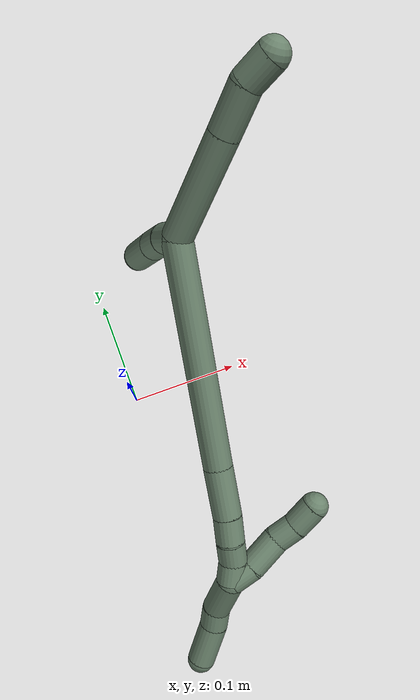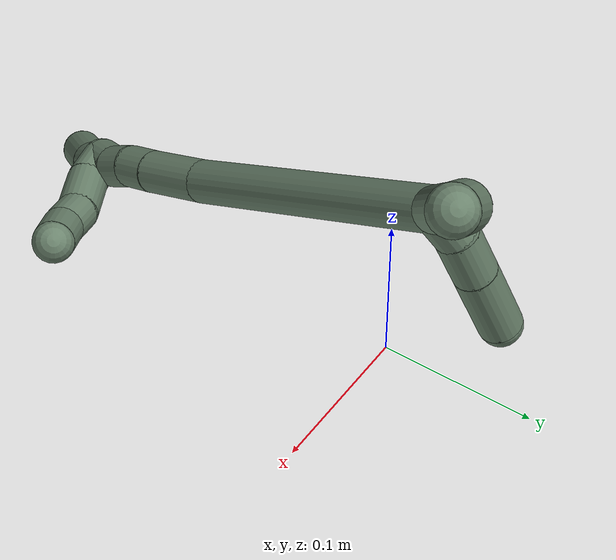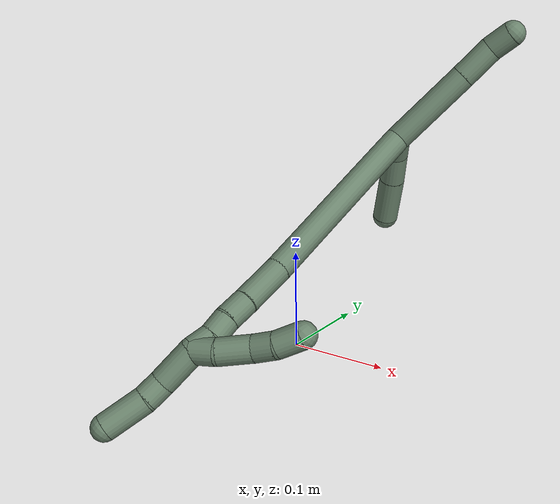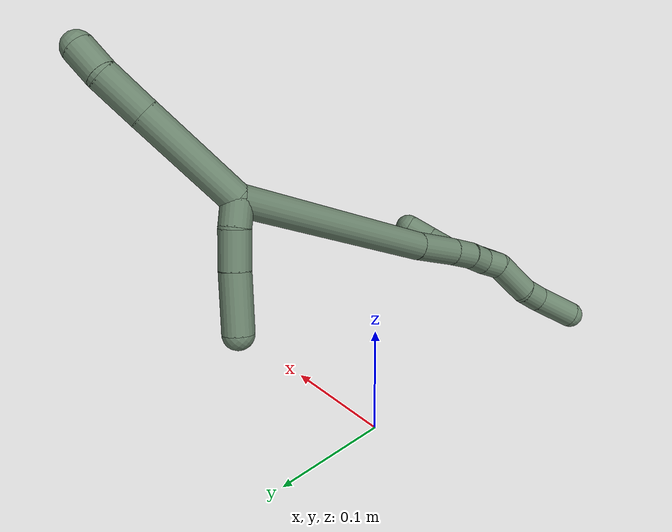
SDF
<sdf version="1.7">
 <world name="default">
  <model name="17">
   <static>0</static>
   <link name="17">
    <collision name="collision-cylinder-e_1_2_8">
     <pose>0.004883 -0.000719 0.043388 0.01656 0.112065 0.000929</pose>
     <geometry><cylinder><radius>0.0125</radius><length>0.087336</length></cylinder></geometry>
     <surface>
      <friction><ode><mu>1.16</mu><mu2>1.16</mu2><slip1>0</slip1><slip2>0</slip2></ode></friction>
      <contact><ode><kp>1e+06</kp><kd>1</kd><max_vel>0</max_vel><min_depth>0.001</min_depth></ode></contact>
     </surface>
    </collision>
    <visual name="visual-cylinder-e_1_2_8">
     <pose>0.004883 -0.000719 0.043388 0.01656 0.112065 0.000929</pose>
     <geometry><cylinder><radius>0.0125</radius><length>0.087336</length></cylinder></geometry>
     <material><ambient>0.415686 0.509804 0.423529 1</ambient></material>
    </visual>
    <collision name="collision-cylinder-e_2_8_9">
     <pose>0.011671 -0.001898 0.105497 0.024626 0.101337 0.001249</pose>
     <geometry><cylinder><radius>0.0125</radius><length>0.037646</length></cylinder></geometry>
     <surface>
      <friction><ode><mu>1.16</mu><mu2>1.16</mu2><slip1>0</slip1><slip2>0</slip2></ode></friction>
      <contact><ode><kp>1e+06</kp><kd>1</kd><max_vel>0</max_vel><min_depth>0.001</min_depth></ode></contact>
     </surface>
    </collision>
    <visual name="visual-cylinder-e_2_8_9">
     <pose>0.011671 -0.001898 0.105497 0.024626 0.101337 0.001249</pose>
     <geometry><cylinder><radius>0.0125</radius><length>0.037646</length></cylinder></geometry>
     <material><ambient>0.415686 0.509804 0.423529 1</ambient></material>
    </visual>
    <collision name="collision-cylinder-e_3_9_6">
     <pose>0.018348 -0.004321 0.135613 0.170465 0.39143 0.033874</pose>
     <geometry><cylinder><radius>0.0125</radius><length>0.025019</length></cylinder></geometry>
     <surface>
      <friction><ode><mu>1.16</mu><mu2>1.16</mu2><slip1>0</slip1><slip2>0</slip2></ode></friction>
      <contact><ode><kp>1e+06</kp><kd>1</kd><max_vel>0</max_vel><min_depth>0.001</min_depth></ode></contact>
     </surface>
    </collision>
    <visual name="visual-cylinder-e_3_9_6">
     <pose>0.018348 -0.004321 0.135613 0.170465 0.39143 0.033874</pose>
     <geometry><cylinder><radius>0.0125</radius><length>0.025019</length></cylinder></geometry>
     <material><ambient>0.415686 0.509804 0.423529 1</ambient></material>
    </visual>
    <collision name="collision-cylinder-e_1_2_10">
     <pose>-0.001057 0.008605 -0.006032 -2.18219 -0.100293 0.192352</pose>
     <geometry><cylinder><radius>0.0125</radius><length>0.021123</length></cylinder></geometry>
     <surface>
      <friction><ode><mu>1.16</mu><mu2>1.16</mu2><slip1>0</slip1><slip2>0</slip2></ode></friction>
      <contact><ode><kp>1e+06</kp><kd>1</kd><max_vel>0</max_vel><min_depth>0.001</min_depth></ode></contact>
     </surface>
    </collision>
    <visual name="visual-cylinder-e_1_2_10">
     <pose>-0.001057 0.008605 -0.006032 -2.18219 -0.100293 0.192352</pose>
     <geometry><cylinder><radius>0.0125</radius><length>0.021123</length></cylinder></geometry>
     <material><ambient>0.415686 0.509804 0.423529 1</ambient></material>
    </visual>
    <collision name="collision-cylinder-e_2_10_11">
     <pose>-0.001448 0.028625 -0.02257 -2.31476 0.042968 -0.097881</pose>
     <geometry><cylinder><radius>0.0125</radius><length>0.031057</length></cylinder></geometry>
     <surface>
      <friction><ode><mu>1.16</mu><mu2>1.16</mu2><slip1>0</slip1><slip2>0</slip2></ode></friction>
      <contact><ode><kp>1e+06</kp><kd>1</kd><max_vel>0</max_vel><min_depth>0.001</min_depth></ode></contact>
     </surface>
    </collision>
    <visual name="visual-cylinder-e_2_10_11">
     <pose>-0.001448 0.028625 -0.02257 -2.31476 0.042968 -0.097881</pose>
     <geometry><cylinder><radius>0.0125</radius><length>0.031057</length></cylinder></geometry>
     <material><ambient>0.415686 0.509804 0.423529 1</ambient></material>
    </visual>
    <collision name="collision-cylinder-e_3_11_5">
     <pose>-2.1e-05 0.056894 -0.050019 -2.35879 0.031771 -0.076953</pose>
     <geometry><cylinder><radius>0.0125</radius><length>0.04782</length></cylinder></geometry>
     <surface>
      <friction><ode><mu>1.16</mu><mu2>1.16</mu2><slip1>0</slip1><slip2>0</slip2></ode></friction>
      <contact><ode><kp>1e+06</kp><kd>1</kd><max_vel>0</max_vel><min_depth>0.001</min_depth></ode></contact>
     </surface>
    </collision>
    <visual name="visual-cylinder-e_3_11_5">
     <pose>-2.1e-05 0.056894 -0.050019 -2.35879 0.031771 -0.076953</pose>
     <geometry><cylinder><radius>0.0125</radius><length>0.04782</length></cylinder></geometry>
     <material><ambient>0.415686 0.509804 0.423529 1</ambient></material>
    </visual>
    <collision name="collision-cylinder-e_1_2_12">
     <pose>0.030075 -0.04363 -0.079221 2.63818 0.321037 1.12383</pose>
     <geometry><cylinder><radius>0.0125</radius><length>0.190621</length></cylinder></geometry>
     <surface>
      <friction><ode><mu>1.16</mu><mu2>1.16</mu2><slip1>0</slip1><slip2>0</slip2></ode></friction>
      <contact><ode><kp>1e+06</kp><kd>1</kd><max_vel>0</max_vel><min_depth>0.001</min_depth></ode></contact>
     </surface>
    </collision>
    <visual name="visual-cylinder-e_1_2_12">
     <pose>0.030075 -0.04363 -0.079221 2.63818 0.321037 1.12383</pose>
     <geometry><cylinder><radius>0.0125</radius><length>0.190621</length></cylinder></geometry>
     <material><ambient>0.415686 0.509804 0.423529 1</ambient></material>
    </visual>
    <collision name="collision-cylinder-e_2_12_13">
     <pose>0.067071 -0.098893 -0.176573 2.57112 0.310847 0.981483</pose>
     <geometry><cylinder><radius>0.0125</radius><length>0.045252</length></cylinder></geometry>
     <surface>
      <friction><ode><mu>1.16</mu><mu2>1.16</mu2><slip1>0</slip1><slip2>0</slip2></ode></friction>
      <contact><ode><kp>1e+06</kp><kd>1</kd><max_vel>0</max_vel><min_depth>0.001</min_depth></ode></contact>
     </surface>
    </collision>
    <visual name="visual-cylinder-e_2_12_13">
     <pose>0.067071 -0.098893 -0.176573 2.57112 0.310847 0.981483</pose>
     <geometry><cylinder><radius>0.0125</radius><length>0.045252</length></cylinder></geometry>
     <material><ambient>0.415686 0.509804 0.423529 1</ambient></material>
    </visual>
    <collision name="collision-cylinder-e_3_13_14">
     <pose>0.077007 -0.116428 -0.204673 2.60714 0.254629 0.874721</pose>
     <geometry><cylinder><radius>0.0125</radius><length>0.023944</length></cylinder></geometry>
     <surface>
      <friction><ode><mu>1.16</mu><mu2>1.16</mu2><slip1>0</slip1><slip2>0</slip2></ode></friction>
      <contact><ode><kp>1e+06</kp><kd>1</kd><max_vel>0</max_vel><min_depth>0.001</min_depth></ode></contact>
     </surface>
    </collision>
    <visual name="visual-cylinder-e_3_13_14">
     <pose>0.077007 -0.116428 -0.204673 2.60714 0.254629 0.874721</pose>
     <geometry><cylinder><radius>0.0125</radius><length>0.023944</length></cylinder></geometry>
     <material><ambient>0.415686 0.509804 0.423529 1</ambient></material>
    </visual>
    <collision name="collision-cylinder-e_4_14_15">
     <pose>0.08318 -0.126006 -0.223483 2.74743 0.318561 1.35498</pose>
     <geometry><cylinder><radius>0.0125</radius><length>0.020162</length></cylinder></geometry>
     <surface>
      <friction><ode><mu>1.16</mu><mu2>1.16</mu2><slip1>0</slip1><slip2>0</slip2></ode></friction>
      <contact><ode><kp>1e+06</kp><kd>1</kd><max_vel>0</max_vel><min_depth>0.001</min_depth></ode></contact>
     </surface>
    </collision>
    <visual name="visual-cylinder-e_4_14_15">
     <pose>0.08318 -0.126006 -0.223483 2.74743 0.318561 1.35498</pose>
     <geometry><cylinder><radius>0.0125</radius><length>0.020162</length></cylinder></geometry>
     <material><ambient>0.415686 0.509804 0.423529 1</ambient></material>
    </visual>
    <collision name="collision-cylinder-e_5_15_1">
     <pose>0.086761 -0.134145 -0.241274 2.67911 0.042329 0.179322</pose>
     <geometry><cylinder><radius>0.0125</radius><length>0.020021</length></cylinder></geometry>
     <surface>
      <friction><ode><mu>1.16</mu><mu2>1.16</mu2><slip1>0</slip1><slip2>0</slip2></ode></friction>
      <contact><ode><kp>1e+06</kp><kd>1</kd><max_vel>0</max_vel><min_depth>0.001</min_depth></ode></contact>
     </surface>
    </collision>
    <visual name="visual-cylinder-e_5_15_1">
     <pose>0.086761 -0.134145 -0.241274 2.67911 0.042329 0.179322</pose>
     <geometry><cylinder><radius>0.0125</radius><length>0.020021</length></cylinder></geometry>
     <material><ambient>0.415686 0.509804 0.423529 1</ambient></material>
    </visual>
    <collision name="collision-cylinder-e_1_1_16">
     <pose>0.095446 -0.136325 -0.243107 -0.31035 0.83535 -0.138623</pose>
     <geometry><cylinder><radius>0.0125</radius><length>0.022283</length></cylinder></geometry>
     <surface>
      <friction><ode><mu>1.16</mu><mu2>1.16</mu2><slip1>0</slip1><slip2>0</slip2></ode></friction>
      <contact><ode><kp>1e+06</kp><kd>1</kd><max_vel>0</max_vel><min_depth>0.001</min_depth></ode></contact>
     </surface>
    </collision>
    <visual name="visual-cylinder-e_1_1_16">
     <pose>0.095446 -0.136325 -0.243107 -0.31035 0.83535 -0.138623</pose>
     <geometry><cylinder><radius>0.0125</radius><length>0.022283</length></cylinder></geometry>
     <material><ambient>0.415686 0.509804 0.423529 1</ambient></material>
    </visual>
    <collision name="collision-cylinder-e_2_16_17">
     <pose>0.113002 -0.128463 -0.223952 -0.434046 0.611057 -0.138867</pose>
     <geometry><cylinder><radius>0.0125</radius><length>0.032396</length></cylinder></geometry>
     <surface>
      <friction><ode><mu>1.16</mu><mu2>1.16</mu2><slip1>0</slip1><slip2>0</slip2></ode></friction>
      <contact><ode><kp>1e+06</kp><kd>1</kd><max_vel>0</max_vel><min_depth>0.001</min_depth></ode></contact>
     </surface>
    </collision>
    <visual name="visual-cylinder-e_2_16_17">
     <pose>0.113002 -0.128463 -0.223952 -0.434046 0.611057 -0.138867</pose>
     <geometry><cylinder><radius>0.0125</radius><length>0.032396</length></cylinder></geometry>
     <material><ambient>0.415686 0.509804 0.423529 1</ambient></material>
    </visual>
    <collision name="collision-cylinder-e_3_17_18">
     <pose>0.128892 -0.121973 -0.203864 -0.112631 0.683335 -0.04009</pose>
     <geometry><cylinder><radius>0.0125</radius><length>0.020897</length></cylinder></geometry>
     <surface>
      <friction><ode><mu>1.16</mu><mu2>1.16</mu2><slip1>0</slip1><slip2>0</slip2></ode></friction>
      <contact><ode><kp>1e+06</kp><kd>1</kd><max_vel>0</max_vel><min_depth>0.001</min_depth></ode></contact>
     </surface>
    </collision>
    <visual name="visual-cylinder-e_3_17_18">
     <pose>0.128892 -0.121973 -0.203864 -0.112631 0.683335 -0.04009</pose>
     <geometry><cylinder><radius>0.0125</radius><length>0.020897</length></cylinder></geometry>
     <material><ambient>0.415686 0.509804 0.423529 1</ambient></material>
    </visual>
    <collision name="collision-cylinder-e_4_18_4">
     <pose>0.140785 -0.119223 -0.184964 -0.167905 0.44853 -0.038385</pose>
     <geometry><cylinder><radius>0.0125</radius><length>0.024424</length></cylinder></geometry>
     <surface>
      <friction><ode><mu>1.16</mu><mu2>1.16</mu2><slip1>0</slip1><slip2>0</slip2></ode></friction>
      <contact><ode><kp>1e+06</kp><kd>1</kd><max_vel>0</max_vel><min_depth>0.001</min_depth></ode></contact>
     </surface>
    </collision>
    <visual name="visual-cylinder-e_4_18_4">
     <pose>0.140785 -0.119223 -0.184964 -0.167905 0.44853 -0.038385</pose>
     <geometry><cylinder><radius>0.0125</radius><length>0.024424</length></cylinder></geometry>
     <material><ambient>0.415686 0.509804 0.423529 1</ambient></material>
    </visual>
    <collision name="collision-cylinder-e_1_1_19">
     <pose>0.086676 -0.138859 -0.269483 3.12854 -0.026384 -2.22261</pose>
     <geometry><cylinder><radius>0.0125</radius><length>0.038533</length></cylinder></geometry>
     <surface>
      <friction><ode><mu>1.16</mu><mu2>1.16</mu2><slip1>0</slip1><slip2>0</slip2></ode></friction>
      <contact><ode><kp>1e+06</kp><kd>1</kd><max_vel>0</max_vel><min_depth>0.001</min_depth></ode></contact>
     </surface>
    </collision>
    <visual name="visual-cylinder-e_1_1_19">
     <pose>0.086676 -0.138859 -0.269483 3.12854 -0.026384 -2.22261</pose>
     <geometry><cylinder><radius>0.0125</radius><length>0.038533</length></cylinder></geometry>
     <material><ambient>0.415686 0.509804 0.423529 1</ambient></material>
    </visual>
    <collision name="collision-cylinder-e_2_19_20">
     <pose>0.087186 -0.141751 -0.298502 2.87741 0.100325 0.722554</pose>
     <geometry><cylinder><radius>0.0125</radius><length>0.020327</length></cylinder></geometry>
     <surface>
      <friction><ode><mu>1.16</mu><mu2>1.16</mu2><slip1>0</slip1><slip2>0</slip2></ode></friction>
      <contact><ode><kp>1e+06</kp><kd>1</kd><max_vel>0</max_vel><min_depth>0.001</min_depth></ode></contact>
     </surface>
    </collision>
    <visual name="visual-cylinder-e_2_19_20">
     <pose>0.087186 -0.141751 -0.298502 2.87741 0.100325 0.722554</pose>
     <geometry><cylinder><radius>0.0125</radius><length>0.020327</length></cylinder></geometry>
     <material><ambient>0.415686 0.509804 0.423529 1</ambient></material>
    </visual>
    <collision name="collision-cylinder-e_3_20_3">
     <pose>0.086494 -0.150347 -0.327879 2.84683 -0.083245 -0.546994</pose>
     <geometry><cylinder><radius>0.0125</radius><length>0.04114</length></cylinder></geometry>
     <surface>
      <friction><ode><mu>1.16</mu><mu2>1.16</mu2><slip1>0</slip1><slip2>0</slip2></ode></friction>
      <contact><ode><kp>1e+06</kp><kd>1</kd><max_vel>0</max_vel><min_depth>0.001</min_depth></ode></contact>
     </surface>
    </collision>
    <visual name="visual-cylinder-e_3_20_3">
     <pose>0.086494 -0.150347 -0.327879 2.84683 -0.083245 -0.546994</pose>
     <geometry><cylinder><radius>0.0125</radius><length>0.04114</length></cylinder></geometry>
     <material><ambient>0.415686 0.509804 0.423529 1</ambient></material>
    </visual>
    <collision name="collision-sphere-3">
     <pose>0.084783 -0.156302 -0.347493 0 -0 0</pose>
     <geometry><sphere><radius>0.0125</radius></sphere></geometry>
     <surface>
      <friction><ode><mu>1.16</mu><mu2>1.16</mu2><slip1>0</slip1><slip2>0</slip2></ode></friction>
      <contact><ode><kp>1e+06</kp><kd>1</kd><max_vel>0</max_vel><min_depth>0.001</min_depth></ode></contact>
     </surface>
    </collision>
    <visual name="visual-sphere-3">
     <pose>0.084783 -0.156302 -0.347493 0 -0 0</pose>
     <geometry><sphere><radius>0.0125</radius></sphere></geometry>
     <material><ambient>0.415686 0.509804 0.423529 1</ambient></material>
    </visual>
    <collision name="collision-sphere-20">
     <pose>0.088204 -0.144392 -0.308264 0 -0 0</pose>
     <geometry><sphere><radius>0.0125</radius></sphere></geometry>
     <surface>
      <friction><ode><mu>1.16</mu><mu2>1.16</mu2><slip1>0</slip1><slip2>0</slip2></ode></friction>
      <contact><ode><kp>1e+06</kp><kd>1</kd><max_vel>0</max_vel><min_depth>0.001</min_depth></ode></contact>
     </surface>
    </collision>
    <visual name="visual-sphere-20">
     <pose>0.088204 -0.144392 -0.308264 0 -0 0</pose>
     <geometry><sphere><radius>0.0125</radius></sphere></geometry>
     <material><ambient>0.415686 0.509804 0.423529 1</ambient></material>
    </visual>
    <collision name="collision-sphere-19">
     <pose>0.086168 -0.139111 -0.288741 0 -0 0</pose>
     <geometry><sphere><radius>0.0125</radius></sphere></geometry>
     <surface>
      <friction><ode><mu>1.16</mu><mu2>1.16</mu2><slip1>0</slip1><slip2>0</slip2></ode></friction>
      <contact><ode><kp>1e+06</kp><kd>1</kd><max_vel>0</max_vel><min_depth>0.001</min_depth></ode></contact>
     </surface>
    </collision>
    <visual name="visual-sphere-19">
     <pose>0.086168 -0.139111 -0.288741 0 -0 0</pose>
     <geometry><sphere><radius>0.0125</radius></sphere></geometry>
     <material><ambient>0.415686 0.509804 0.423529 1</ambient></material>
    </visual>
    <collision name="collision-sphere-11">
     <pose>-0.000781 0.04004 -0.033076 0 -0 0</pose>
     <geometry><sphere><radius>0.0125</radius></sphere></geometry>
     <surface>
      <friction><ode><mu>1.16</mu><mu2>1.16</mu2><slip1>0</slip1><slip2>0</slip2></ode></friction>
      <contact><ode><kp>1e+06</kp><kd>1</kd><max_vel>0</max_vel><min_depth>0.001</min_depth></ode></contact>
     </surface>
    </collision>
    <visual name="visual-sphere-11">
     <pose>-0.000781 0.04004 -0.033076 0 -0 0</pose>
     <geometry><sphere><radius>0.0125</radius></sphere></geometry>
     <material><ambient>0.415686 0.509804 0.423529 1</ambient></material>
    </visual>
    <collision name="collision-sphere-10">
     <pose>-0.002115 0.017209 -0.012064 0 -0 0</pose>
     <geometry><sphere><radius>0.0125</radius></sphere></geometry>
     <surface>
      <friction><ode><mu>1.16</mu><mu2>1.16</mu2><slip1>0</slip1><slip2>0</slip2></ode></friction>
      <contact><ode><kp>1e+06</kp><kd>1</kd><max_vel>0</max_vel><min_depth>0.001</min_depth></ode></contact>
     </surface>
    </collision>
    <visual name="visual-sphere-10">
     <pose>-0.002115 0.017209 -0.012064 0 -0 0</pose>
     <geometry><sphere><radius>0.0125</radius></sphere></geometry>
     <material><ambient>0.415686 0.509804 0.423529 1</ambient></material>
    </visual>
    <collision name="collision-sphere-6">
     <pose>0.02312 -0.006283 0.147008 0 -0 0</pose>
     <geometry><sphere><radius>0.0125</radius></sphere></geometry>
     <surface>
      <friction><ode><mu>1.16</mu><mu2>1.16</mu2><slip1>0</slip1><slip2>0</slip2></ode></friction>
      <contact><ode><kp>1e+06</kp><kd>1</kd><max_vel>0</max_vel><min_depth>0.001</min_depth></ode></contact>
     </surface>
    </collision>
    <visual name="visual-sphere-6">
     <pose>0.02312 -0.006283 0.147008 0 -0 0</pose>
     <geometry><sphere><radius>0.0125</radius></sphere></geometry>
     <material><ambient>0.415686 0.509804 0.423529 1</ambient></material>
    </visual>
    <collision name="collision-sphere-9">
     <pose>0.013575 -0.002359 0.124217 0 -0 0</pose>
     <geometry><sphere><radius>0.0125</radius></sphere></geometry>
     <surface>
      <friction><ode><mu>1.16</mu><mu2>1.16</mu2><slip1>0</slip1><slip2>0</slip2></ode></friction>
      <contact><ode><kp>1e+06</kp><kd>1</kd><max_vel>0</max_vel><min_depth>0.001</min_depth></ode></contact>
     </surface>
    </collision>
    <visual name="visual-sphere-9">
     <pose>0.013575 -0.002359 0.124217 0 -0 0</pose>
     <geometry><sphere><radius>0.0125</radius></sphere></geometry>
     <material><ambient>0.415686 0.509804 0.423529 1</ambient></material>
    </visual>
    <collision name="collision-sphere-2">
     <geometry><sphere><radius>0.0125</radius></sphere></geometry>
     <surface>
      <friction><ode><mu>1.16</mu><mu2>1.16</mu2><slip1>0</slip1><slip2>0</slip2></ode></friction>
      <contact><ode><kp>1e+06</kp><kd>1</kd><max_vel>0</max_vel><min_depth>0.001</min_depth></ode></contact>
     </surface>
    </collision>
    <visual name="visual-sphere-2">
     <geometry><sphere><radius>0.0125</radius></sphere></geometry>
     <material><ambient>0.415686 0.509804 0.423529 1</ambient></material>
    </visual>
    <collision name="collision-sphere-8">
     <pose>0.009767 -0.001437 0.086776 0 -0 0</pose>
     <geometry><sphere><radius>0.0125</radius></sphere></geometry>
     <surface>
      <friction><ode><mu>1.16</mu><mu2>1.16</mu2><slip1>0</slip1><slip2>0</slip2></ode></friction>
      <contact><ode><kp>1e+06</kp><kd>1</kd><max_vel>0</max_vel><min_depth>0.001</min_depth></ode></contact>
     </surface>
    </collision>
    <visual name="visual-sphere-8">
     <pose>0.009767 -0.001437 0.086776 0 -0 0</pose>
     <geometry><sphere><radius>0.0125</radius></sphere></geometry>
     <material><ambient>0.415686 0.509804 0.423529 1</ambient></material>
    </visual>
    <collision name="collision-sphere-5">
     <pose>0.000738 0.073749 -0.066961 0 -0 0</pose>
     <geometry><sphere><radius>0.0125</radius></sphere></geometry>
     <surface>
      <friction><ode><mu>1.16</mu><mu2>1.16</mu2><slip1>0</slip1><slip2>0</slip2></ode></friction>
      <contact><ode><kp>1e+06</kp><kd>1</kd><max_vel>0</max_vel><min_depth>0.001</min_depth></ode></contact>
     </surface>
    </collision>
    <visual name="visual-sphere-5">
     <pose>0.000738 0.073749 -0.066961 0 -0 0</pose>
     <geometry><sphere><radius>0.0125</radius></sphere></geometry>
     <material><ambient>0.415686 0.509804 0.423529 1</ambient></material>
    </visual>
    <collision name="collision-sphere-12">
     <pose>0.060151 -0.08726 -0.158443 0 -0 0</pose>
     <geometry><sphere><radius>0.0125</radius></sphere></geometry>
     <surface>
      <friction><ode><mu>1.16</mu><mu2>1.16</mu2><slip1>0</slip1><slip2>0</slip2></ode></friction>
      <contact><ode><kp>1e+06</kp><kd>1</kd><max_vel>0</max_vel><min_depth>0.001</min_depth></ode></contact>
     </surface>
    </collision>
    <visual name="visual-sphere-12">
     <pose>0.060151 -0.08726 -0.158443 0 -0 0</pose>
     <geometry><sphere><radius>0.0125</radius></sphere></geometry>
     <material><ambient>0.415686 0.509804 0.423529 1</ambient></material>
    </visual>
    <collision name="collision-sphere-13">
     <pose>0.073992 -0.110526 -0.194703 0 -0 0</pose>
     <geometry><sphere><radius>0.0125</radius></sphere></geometry>
     <surface>
      <friction><ode><mu>1.16</mu><mu2>1.16</mu2><slip1>0</slip1><slip2>0</slip2></ode></friction>
      <contact><ode><kp>1e+06</kp><kd>1</kd><max_vel>0</max_vel><min_depth>0.001</min_depth></ode></contact>
     </surface>
    </collision>
    <visual name="visual-sphere-13">
     <pose>0.073992 -0.110526 -0.194703 0 -0 0</pose>
     <geometry><sphere><radius>0.0125</radius></sphere></geometry>
     <material><ambient>0.415686 0.509804 0.423529 1</ambient></material>
    </visual>
    <collision name="collision-sphere-14">
     <pose>0.080023 -0.12233 -0.214644 0 -0 0</pose>
     <geometry><sphere><radius>0.0125</radius></sphere></geometry>
     <surface>
      <friction><ode><mu>1.16</mu><mu2>1.16</mu2><slip1>0</slip1><slip2>0</slip2></ode></friction>
      <contact><ode><kp>1e+06</kp><kd>1</kd><max_vel>0</max_vel><min_depth>0.001</min_depth></ode></contact>
     </surface>
    </collision>
    <visual name="visual-sphere-14">
     <pose>0.080023 -0.12233 -0.214644 0 -0 0</pose>
     <geometry><sphere><radius>0.0125</radius></sphere></geometry>
     <material><ambient>0.415686 0.509804 0.423529 1</ambient></material>
    </visual>
    <collision name="collision-sphere-15">
     <pose>0.086338 -0.129683 -0.232323 0 -0 0</pose>
     <geometry><sphere><radius>0.0125</radius></sphere></geometry>
     <surface>
      <friction><ode><mu>1.16</mu><mu2>1.16</mu2><slip1>0</slip1><slip2>0</slip2></ode></friction>
      <contact><ode><kp>1e+06</kp><kd>1</kd><max_vel>0</max_vel><min_depth>0.001</min_depth></ode></contact>
     </surface>
    </collision>
    <visual name="visual-sphere-15">
     <pose>0.086338 -0.129683 -0.232323 0 -0 0</pose>
     <geometry><sphere><radius>0.0125</radius></sphere></geometry>
     <material><ambient>0.415686 0.509804 0.423529 1</ambient></material>
    </visual>
    <collision name="collision-sphere-1">
     <pose>0.087185 -0.138608 -0.250225 0 -0 0</pose>
     <geometry><sphere><radius>0.0125</radius></sphere></geometry>
     <surface>
      <friction><ode><mu>1.16</mu><mu2>1.16</mu2><slip1>0</slip1><slip2>0</slip2></ode></friction>
      <contact><ode><kp>1e+06</kp><kd>1</kd><max_vel>0</max_vel><min_depth>0.001</min_depth></ode></contact>
     </surface>
    </collision>
    <visual name="visual-sphere-1">
     <pose>0.087185 -0.138608 -0.250225 0 -0 0</pose>
     <geometry><sphere><radius>0.0125</radius></sphere></geometry>
     <material><ambient>0.415686 0.509804 0.423529 1</ambient></material>
    </visual>
    <collision name="collision-sphere-18">
     <pose>0.135489 -0.121062 -0.195813 0 -0 0</pose>
     <geometry><sphere><radius>0.0125</radius></sphere></geometry>
     <surface>
      <friction><ode><mu>1.16</mu><mu2>1.16</mu2><slip1>0</slip1><slip2>0</slip2></ode></friction>
      <contact><ode><kp>1e+06</kp><kd>1</kd><max_vel>0</max_vel><min_depth>0.001</min_depth></ode></contact>
     </surface>
    </collision>
    <visual name="visual-sphere-18">
     <pose>0.135489 -0.121062 -0.195813 0 -0 0</pose>
     <geometry><sphere><radius>0.0125</radius></sphere></geometry>
     <material><ambient>0.415686 0.509804 0.423529 1</ambient></material>
    </visual>
    <collision name="collision-sphere-16">
     <pose>0.103708 -0.134042 -0.235989 0 -0 0</pose>
     <geometry><sphere><radius>0.0125</radius></sphere></geometry>
     <surface>
      <friction><ode><mu>1.16</mu><mu2>1.16</mu2><slip1>0</slip1><slip2>0</slip2></ode></friction>
      <contact><ode><kp>1e+06</kp><kd>1</kd><max_vel>0</max_vel><min_depth>0.001</min_depth></ode></contact>
     </surface>
    </collision>
    <visual name="visual-sphere-16">
     <pose>0.103708 -0.134042 -0.235989 0 -0 0</pose>
     <geometry><sphere><radius>0.0125</radius></sphere></geometry>
     <material><ambient>0.415686 0.509804 0.423529 1</ambient></material>
    </visual>
    <collision name="collision-sphere-17">
     <pose>0.122295 -0.122884 -0.211916 0 -0 0</pose>
     <geometry><sphere><radius>0.0125</radius></sphere></geometry>
     <surface>
      <friction><ode><mu>1.16</mu><mu2>1.16</mu2><slip1>0</slip1><slip2>0</slip2></ode></friction>
      <contact><ode><kp>1e+06</kp><kd>1</kd><max_vel>0</max_vel><min_depth>0.001</min_depth></ode></contact>
     </surface>
    </collision>
    <visual name="visual-sphere-17">
     <pose>0.122295 -0.122884 -0.211916 0 -0 0</pose>
     <geometry><sphere><radius>0.0125</radius></sphere></geometry>
     <material><ambient>0.415686 0.509804 0.423529 1</ambient></material>
    </visual>
    <collision name="collision-sphere-4">
     <pose>0.14608 -0.117384 -0.174115 0 -0 0</pose>
     <geometry><sphere><radius>0.0125</radius></sphere></geometry>
     <surface>
      <friction><ode><mu>1.16</mu><mu2>1.16</mu2><slip1>0</slip1><slip2>0</slip2></ode></friction>
      <contact><ode><kp>1e+06</kp><kd>1</kd><max_vel>0</max_vel><min_depth>0.001</min_depth></ode></contact>
     </surface>
    </collision>
    <visual name="visual-sphere-4">
     <pose>0.14608 -0.117384 -0.174115 0 -0 0</pose>
     <geometry><sphere><radius>0.0125</radius></sphere></geometry>
     <material><ambient>0.415686 0.509804 0.423529 1</ambient></material>
    </visual>
    <inertial>
     <pose>0.04783 -0.059112 -0.107714 0 -0 0</pose>
     <mass>0.75</mass>
     <inertia>
      <ixx>0.000857</ixx>
      <ixy>0</ixy>
      <ixz>0</ixz>
      <iyy>0.000412</iyy>
      <iyz>0</iyz>
      <izz>4.8e-05</izz>
     </inertia>
    </inertial>
   </link>
   <pose>0.074324 0.068313 0.212321 -0.65343 0.383523 -0.330665</pose>
  </model>
 </world>
</sdf>
